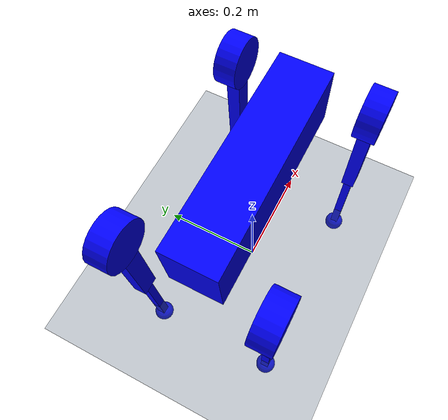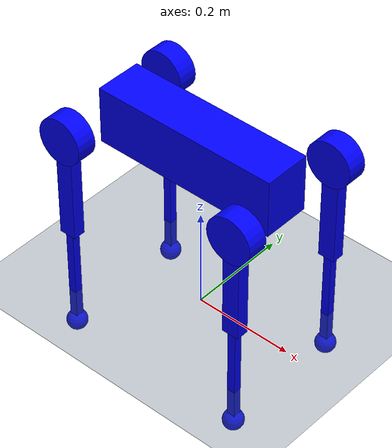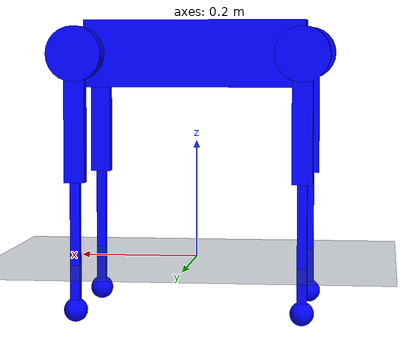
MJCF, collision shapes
<mujoco model="unitree_go1_scene">
  <include file="../model/robot.xml"/>
  <compiler meshdir="../model/assets"/>

  <statistic center="0 0 0.1" extent="1.0"/>
  <visual>
    <headlight diffuse="0.82 0.86 0.9" ambient="0.42 0.48 0.54" specular="0.15 0.15 0.18"/>
    <global azimuth="120" elevation="-20"/>
  </visual>
  <asset>
    <texture type="skybox" builtin="gradient" rgb1="0.3 0.5 0.7" rgb2="0 0 0" width="512" height="3072"/>
    <texture type="2d" name="groundplane" builtin="checker" mark="edge" rgb1="0.28 0.38 0.46" rgb2="0.16 0.23 0.30" markrgb="0.56 0.64 0.70" width="300" height="300"/>
    <material name="groundplane" texture="groundplane" texuniform="true" texrepeat="5 5" reflectance="0.2"/>
  </asset>
  <worldbody>
    <light pos="0 0 3" dir="0 0 -1" directional="true"/>
    <geom name="floor" size="0 0 0.05" type="plane" material="groundplane" friction="0.8 0.02 0.01"/>
  </worldbody>
</mujoco>

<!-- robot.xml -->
<mujoco model="unitree_go1">
  <compiler angle="radian" meshdir="assets" autolimits="true"/>
  <!-- timestep 不在此声明：运行时统一取 contract.json control.physics_hz -->
  <option gravity="0 0 -9.81" integrator="implicitfast" cone="elliptic" impratio="100" />

  <default>
    <joint axis="0 1 0" damping="0.1" armature="0.01" frictionloss="0.2"/>
  </default>

  <asset>
    <mesh name="trunk" file="trunk.stl"/>
    <mesh name="hip" file="hip.stl"/>
    <mesh name="thigh_mirror" file="thigh_mirror.stl"/>
    <mesh name="calf" file="calf.stl"/>
    <mesh name="thigh" file="thigh.stl"/>
    <mesh name="d435" file="d435_simplified.stl"/>
  </asset>

  <worldbody>
    <body name="base_link" pos="0 0 0.35">
      <inertial pos="0.0116053 0.00442221 0.000106692" quat="0.0111438 0.707126 -0.00935374 0.706938" mass="4.801" diaginertia="0.0447997 0.0366257 0.0162187"/>
      <freejoint name="floating_base_joint"/>
      <site name="imu" pos="0 0 0"/>
      <geom name="trunk_visual" type="mesh" contype="0" conaffinity="0" group="1" rgba="0.913725 0.913725 0.847059 1" mesh="trunk"/>
      <geom name="trunk_collision" size="0.1881 0.04675 0.057" type="box" rgba="0 0 1 0.55"/>

      <body name="depth_camera" pos="0.28 0 0.12" euler="0 0.43633 0">
        <camera name="depth_camera" pos="0 0 0" euler="1.57 -1.57 0" fovy="58"/>
        <geom name="depth_camera_visual" type="mesh" euler="-1.57 1.57 0" contype="0" conaffinity="0" group="1" rgba="0.913725 0.913725 0.847059 1" mesh="d435"/>
      </body>

      <body name="FR_hip" pos="0.1881 -0.04675 0">
        <inertial pos="-0.00406411 -0.0193463 4.50733e-06" quat="0.467526 0.531662 -0.466259 0.530431" mass="0.679292" diaginertia="0.00131334 0.00122648 0.000728484"/>
        <joint name="FR_hip_joint" pos="0 0 0" axis="1 0 0" range="-0.802851 0.802851" actuatorfrcrange="-23.7 23.7" armature="0.01" frictionloss="0.2"/>
        <geom name="FR_hip_visual" quat="0 1 0 0" type="mesh" contype="0" conaffinity="0" group="1" rgba="0.913725 0.913725 0.847059 1" mesh="hip"/>
        <geom name="FR_hip_collision" size="0.046 0.02" pos="0 -0.08 0" quat="0.707107 0.707107 0 0" type="cylinder" rgba="0 0 1 0.55"/>

        <body name="FR_thigh" pos="0 -0.08 0">
          <inertial pos="-0.003468 0.018947 -0.032736" quat="0.999266 0.00067676 -0.0382978 0.000639813" mass="0.898919" diaginertia="0.00542178 0.00514246 0.000998869"/>
          <joint name="FR_thigh_joint" pos="0 0 0" axis="0 1 0" range="-1.0472 4.18879" actuatorfrcrange="-23.7 23.7" armature="0.01" frictionloss="0.2"/>
          <geom name="FR_thigh_visual" type="mesh" contype="0" conaffinity="0" group="1" rgba="0.913725 0.913725 0.847059 1" mesh="thigh_mirror"/>
          <geom name="FR_thigh_collision" size="0.1065 0.01225 0.017" pos="0 0 -0.1065" quat="0.707107 0 0.707107 0" type="box" rgba="0 0 1 0.55"/>

          <body name="FR_calf" pos="0 0 -0.213">
            <inertial pos="0.00455603 0.0009473 -0.147239" quat="0.762045 0.00970173 0.0180098 0.647201" mass="0.218015" diaginertia="0.00399678 0.00398122 3.99428e-05"/>
            <joint name="FR_calf_joint" pos="0 0 0" axis="0 1 0" range="-2.69653 -0.916298" actuatorfrcrange="-33.5 33.5" armature="0.01" frictionloss="0.2"/>
            <geom name="FR_calf_visual" type="mesh" contype="0" conaffinity="0" group="1" rgba="0 0 0 1" mesh="calf"/>
            <geom name="FR_calf_collision" size="0.1065 0.008 0.008" pos="0 0 -0.1065" quat="0.707107 0 0.707107 0" type="box" rgba="0 0 1 0.55"/>
            <geom name="FR_foot_collision" size="0.02" pos="0 0 -0.213" rgba="0 0 1 0.55"/>
            <site name="FR" pos="0 0 -0.213" type="sphere" size="0.02"/>
          </body>
        </body>
      </body>

      <body name="FL_hip" pos="0.1881 0.04675 0">
        <inertial pos="-0.00406411 0.0193463 4.50733e-06" quat="0.531662 0.467526 -0.530431 0.466259" mass="0.679292" diaginertia="0.00131334 0.00122648 0.000728484"/>
        <joint name="FL_hip_joint" pos="0 0 0" axis="1 0 0" range="-0.802851 0.802851" actuatorfrcrange="-23.7 23.7" armature="0.01" frictionloss="0.2"/>
        <geom name="FL_hip_visual" type="mesh" contype="0" conaffinity="0" group="1" rgba="0.913725 0.913725 0.847059 1" mesh="hip"/>
        <geom name="FL_hip_collision" size="0.046 0.02" pos="0 0.08 0" quat="0.707107 0.707107 0 0" type="cylinder" rgba="0 0 1 0.55"/>

        <body name="FL_thigh" pos="0 0.08 0">
          <inertial pos="-0.003468 -0.018947 -0.032736" quat="0.999266 -0.00067676 -0.0382978 -0.000639813" mass="0.898919" diaginertia="0.00542178 0.00514246 0.000998869"/>
          <joint name="FL_thigh_joint" pos="0 0 0" axis="0 1 0" range="-1.0472 4.18879" actuatorfrcrange="-23.7 23.7" armature="0.01" frictionloss="0.2"/>
          <geom name="FL_thigh_visual" type="mesh" contype="0" conaffinity="0" group="1" rgba="0.913725 0.913725 0.847059 1" mesh="thigh"/>
          <geom name="FL_thigh_collision" size="0.1065 0.01225 0.017" pos="0 0 -0.1065" quat="0.707107 0 0.707107 0" type="box" rgba="0 0 1 0.55"/>

          <body name="FL_calf" pos="0 0 -0.213">
            <inertial pos="0.00455603 0.0009473 -0.147239" quat="0.762045 0.00970173 0.0180098 0.647201" mass="0.218015" diaginertia="0.00399678 0.00398122 3.99428e-05"/>
            <joint name="FL_calf_joint" pos="0 0 0" axis="0 1 0" range="-2.69653 -0.916298" actuatorfrcrange="-33.5 33.5" armature="0.01" frictionloss="0.2"/>
            <geom name="FL_calf_visual" type="mesh" contype="0" conaffinity="0" group="1" rgba="0 0 0 1" mesh="calf"/>
            <geom name="FL_calf_collision" size="0.1065 0.008 0.008" pos="0 0 -0.1065" quat="0.707107 0 0.707107 0" type="box" rgba="0 0 1 0.55"/>
            <geom name="FL_foot_collision" size="0.02" pos="0 0 -0.213" rgba="0 0 1 0.55"/>
            <site name="FL" pos="0 0 -0.213" type="sphere" size="0.02"/>
          </body>
        </body>
      </body>

      <body name="RL_hip" pos="-0.1881 0.04675 0">
        <inertial pos="0.00406411 0.0193463 4.50733e-06" quat="0.466259 0.530431 -0.467526 0.531662" mass="0.679292" diaginertia="0.00131334 0.00122648 0.000728484"/>
        <joint name="RL_hip_joint" pos="0 0 0" axis="1 0 0" range="-0.802851 0.802851" actuatorfrcrange="-23.7 23.7" armature="0.01" frictionloss="0.2"/>
        <geom name="RL_hip_visual" quat="0 0 1 0" type="mesh" contype="0" conaffinity="0" group="1" rgba="0.913725 0.913725 0.847059 1" mesh="hip"/>
        <geom name="RL_hip_collision" size="0.046 0.02" pos="0 0.08 0" quat="0.707107 0.707107 0 0" type="cylinder" rgba="0 0 1 0.55"/>

        <body name="RL_thigh" pos="0 0.08 0">
          <inertial pos="-0.003468 -0.018947 -0.032736" quat="0.999266 -0.00067676 -0.0382978 -0.000639813" mass="0.898919" diaginertia="0.00542178 0.00514246 0.000998869"/>
          <joint name="RL_thigh_joint" pos="0 0 0" axis="0 1 0" range="-1.0472 4.18879" actuatorfrcrange="-23.7 23.7" armature="0.01" frictionloss="0.2"/>
          <geom name="RL_thigh_visual" type="mesh" contype="0" conaffinity="0" group="1" rgba="0.913725 0.913725 0.847059 1" mesh="thigh"/>
          <geom name="RL_thigh_collision" size="0.1065 0.01225 0.017" pos="0 0 -0.1065" quat="0.707107 0 0.707107 0" type="box" rgba="0 0 1 0.55"/>

          <body name="RL_calf" pos="0 0 -0.213">
            <inertial pos="0.00455603 0.0009473 -0.147239" quat="0.762045 0.00970173 0.0180098 0.647201" mass="0.218015" diaginertia="0.00399678 0.00398122 3.99428e-05"/>
            <joint name="RL_calf_joint" pos="0 0 0" axis="0 1 0" range="-2.69653 -0.916298" actuatorfrcrange="-33.5 33.5" armature="0.01" frictionloss="0.2"/>
            <geom name="RL_calf_visual" type="mesh" contype="0" conaffinity="0" group="1" rgba="0 0 0 1" mesh="calf"/>
            <geom name="RL_calf_collision" size="0.1065 0.008 0.008" pos="0 0 -0.1065" quat="0.707107 0 0.707107 0" type="box" rgba="0 0 1 0.55"/>
            <geom name="RL_foot_collision" size="0.02" pos="0 0 -0.213" rgba="0 0 1 0.55"/>
            <site name="RL" pos="0 0 -0.213" type="sphere" size="0.02"/>
          </body>
        </body>
      </body>

      <body name="RR_hip" pos="-0.1881 -0.04675 0">
        <inertial pos="0.00406411 -0.0193463 4.50733e-06" quat="0.530431 0.466259 -0.531662 0.467526" mass="0.679292" diaginertia="0.00131334 0.00122648 0.000728484"/>
        <joint name="RR_hip_joint" pos="0 0 0" axis="1 0 0" range="-0.802851 0.802851" actuatorfrcrange="-23.7 23.7" armature="0.01" frictionloss="0.2"/>
        <geom name="RR_hip_visual" quat="0 0 0 -1" type="mesh" contype="0" conaffinity="0" group="1" rgba="0.913725 0.913725 0.847059 1" mesh="hip"/>
        <geom name="RR_hip_collision" size="0.046 0.02" pos="0 -0.08 0" quat="0.707107 0.707107 0 0" type="cylinder" rgba="0 0 1 0.55"/>

        <body name="RR_thigh" pos="0 -0.08 0">
          <inertial pos="-0.003468 0.018947 -0.032736" quat="0.999266 0.00067676 -0.0382978 0.000639813" mass="0.898919" diaginertia="0.00542178 0.00514246 0.000998869"/>
          <joint name="RR_thigh_joint" pos="0 0 0" axis="0 1 0" range="-1.0472 4.18879" actuatorfrcrange="-23.7 23.7" armature="0.01" frictionloss="0.2"/>
          <geom name="RR_thigh_visual" type="mesh" contype="0" conaffinity="0" group="1" rgba="0.913725 0.913725 0.847059 1" mesh="thigh_mirror"/>
          <geom name="RR_thigh_collision" size="0.1065 0.01225 0.017" pos="0 0 -0.1065" quat="0.707107 0 0.707107 0" type="box" rgba="0 0 1 0.55"/>

          <body name="RR_calf" pos="0 0 -0.213">
            <inertial pos="0.00455603 0.0009473 -0.147239" quat="0.762045 0.00970173 0.0180098 0.647201" mass="0.218015" diaginertia="0.00399678 0.00398122 3.99428e-05"/>
            <joint name="RR_calf_joint" pos="0 0 0" axis="0 1 0" range="-2.69653 -0.916298" actuatorfrcrange="-33.5 33.5" armature="0.01" frictionloss="0.2"/>
            <geom name="RR_calf_visual" type="mesh" contype="0" conaffinity="0" group="1" rgba="0 0 0 1" mesh="calf"/>
            <geom name="RR_calf_collision" size="0.1065 0.008 0.008" pos="0 0 -0.1065" quat="0.707107 0 0.707107 0" type="box" rgba="0 0 1 0.55"/>
            <geom name="RR_foot_collision" size="0.02" pos="0 0 -0.213" rgba="0 0 1 0.55"/>
            <site name="RR" pos="0 0 -0.213" type="sphere" size="0.02"/>
          </body>
        </body>
      </body>
    </body>
  </worldbody>

  <contact>
    <exclude body1="base_link" body2="FR_hip"/>
    <exclude body1="FR_hip" body2="FR_thigh"/>
    <exclude body1="FR_thigh" body2="FR_calf"/>
    <exclude body1="base_link" body2="FL_hip"/>
    <exclude body1="FL_hip" body2="FL_thigh"/>
    <exclude body1="FL_thigh" body2="FL_calf"/>
    <exclude body1="base_link" body2="RL_hip"/>
    <exclude body1="RL_hip" body2="RL_thigh"/>
    <exclude body1="RL_thigh" body2="RL_calf"/>
    <exclude body1="base_link" body2="RR_hip"/>
    <exclude body1="RR_hip" body2="RR_thigh"/>
    <exclude body1="RR_thigh" body2="RR_calf"/>
  </contact>

  <sensor>
    <framequat name="imu_quat" objtype="site" objname="imu"/>
    <gyro name="imu_ang_vel" site="imu"/>
    <velocimeter name="imu_lin_vel" site="imu"/>
    <accelerometer name="imu_lin_acc" site="imu"/>
    <framepos name="base_pos" objtype="site" objname="imu"/>
  </sensor>

  <actuator>
    <position name="FR_hip_joint" joint="FR_hip_joint" kp="35" kv="0.5"/>
    <position name="FR_thigh_joint" joint="FR_thigh_joint" kp="35" kv="0.5"/>
    <position name="FR_calf_joint" joint="FR_calf_joint" kp="35" kv="0.5"/>
    <position name="FL_hip_joint" joint="FL_hip_joint" kp="35" kv="0.5"/>
    <position name="FL_thigh_joint" joint="FL_thigh_joint" kp="35" kv="0.5"/>
    <position name="FL_calf_joint" joint="FL_calf_joint" kp="35" kv="0.5"/>
    <position name="RR_hip_joint" joint="RR_hip_joint" kp="35" kv="0.5"/>
    <position name="RR_thigh_joint" joint="RR_thigh_joint" kp="35" kv="0.5"/>
    <position name="RR_calf_joint" joint="RR_calf_joint" kp="35" kv="0.5"/>
    <position name="RL_hip_joint" joint="RL_hip_joint" kp="35" kv="0.5"/>
    <position name="RL_thigh_joint" joint="RL_thigh_joint" kp="35" kv="0.5"/>
    <position name="RL_calf_joint" joint="RL_calf_joint" kp="35" kv="0.5"/>
  </actuator>

  <keyframe>
    <!-- 关节段按模型序 FR,FL,RL,RR；右 hip=+0.1、左 hip=-0.1（外展对称，
         himloco yaml/mjlab constants/menagerie 三方一致）。原 keyframe 后两腿
         hip 符号反写（RL=+0.1/RR=-0.1），初始姿态歪斜，v0.43 修正。 -->
    <key name="home" qpos="0 0 0.35 1 0 0 0 0.1 0.8 -1.5 -0.1 0.8 -1.5 -0.1 0.8 -1.5 0.1 0.8 -1.5"/>
  </keyframe>
</mujoco>
